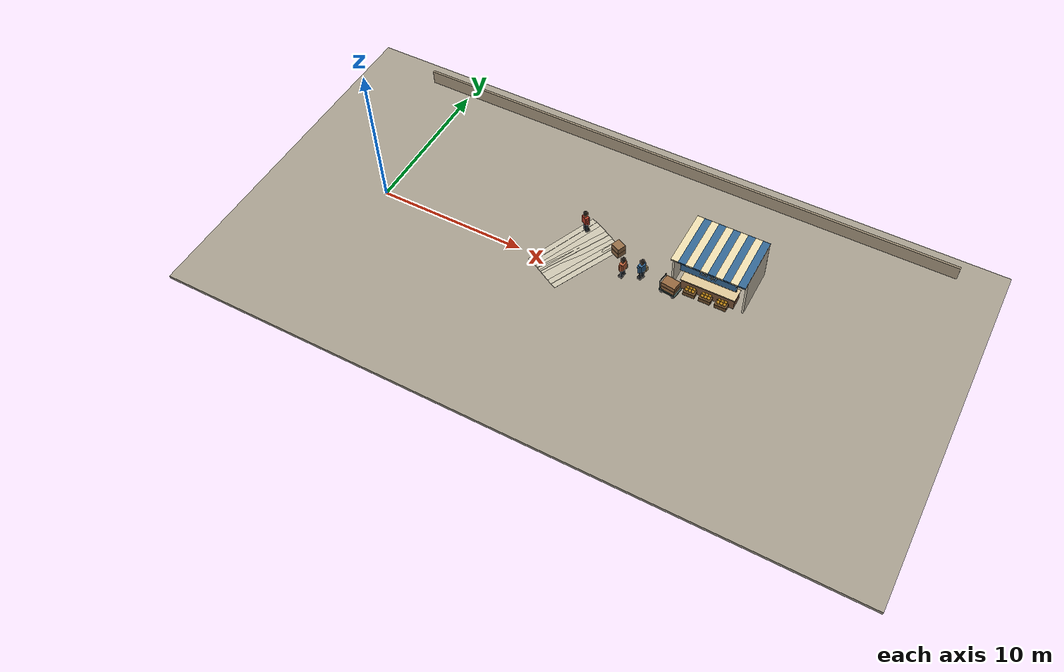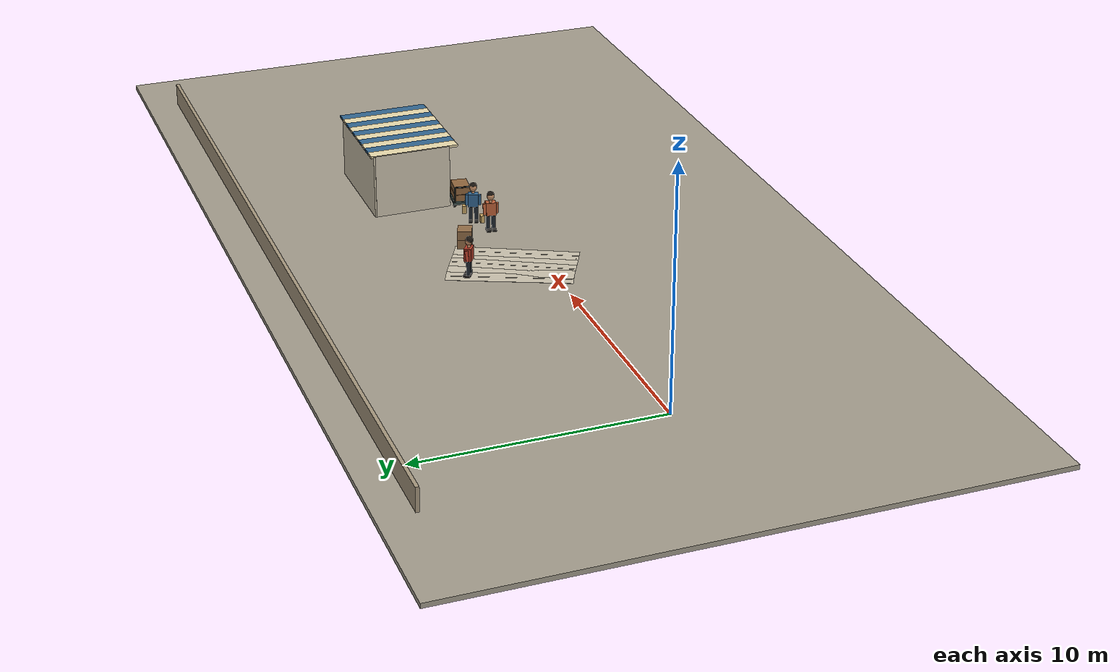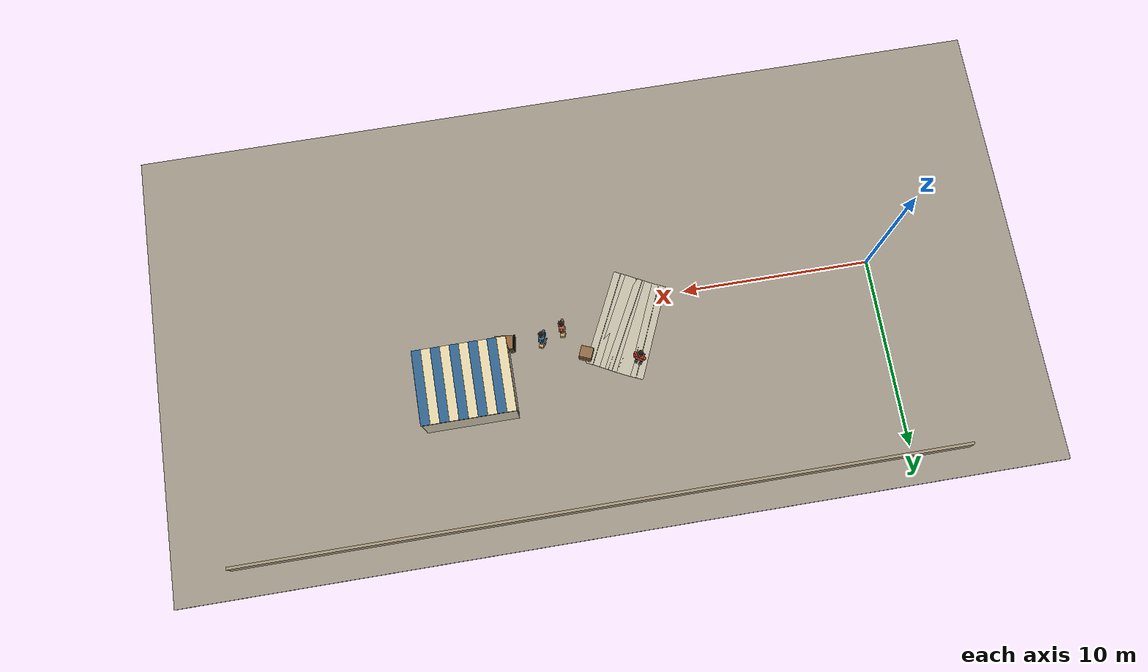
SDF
<sdf version="1.10">
 <world name="swan_market">
  <model name="ground">
   <static>true</static>
   <pose>15 0 -0.1 0 0 0</pose>
   <link name="body">
    <collision name="box_collision"><geometry><box><size>46 24 0.2</size></box></geometry></collision>
    <visual name="box_visual">
     <geometry><box><size>46 24 0.2</size></box></geometry>
     <material><ambient>0.64 0.61 0.55 1</ambient><diffuse>0.64 0.61 0.55 1</diffuse></material>
    </visual>
   </link>
  </model>
  <model name="market_paving_28">
   <static>true</static>
   <pose>12.25 1.7901 0.002 0 0 -0.40758</pose>
   <link name="body">
    <visual name="box_visual">
     <geometry><box><size>0.75 5.2 0.004</size></box></geometry>
     <material><ambient>0.79 0.76 0.68 1</ambient><diffuse>0.79 0.76 0.68 1</diffuse></material>
    </visual>
   </link>
  </model>
  <model name="paving_joint_28">
   <static>true</static>
   <pose>12.25 1.7901 0.0045 0 0 -0.40758</pose>
   <link name="body">
    <visual name="box_visual">
     <geometry><box><size>0.025 5.2 0.001</size></box></geometry>
     <material><ambient>0.67 0.64 0.57 1</ambient><diffuse>0.67 0.64 0.57 1</diffuse></material>
    </visual>
   </link>
  </model>
  <model name="market_paving_29">
   <static>true</static>
   <pose>12.75 1.5562 0.002 0 0 -0.46221</pose>
   <link name="body">
    <visual name="box_visual">
     <geometry><box><size>0.75 5.2 0.004</size></box></geometry>
     <material><ambient>0.79 0.76 0.68 1</ambient><diffuse>0.79 0.76 0.68 1</diffuse></material>
    </visual>
   </link>
  </model>
  <model name="market_paving_30">
   <static>true</static>
   <pose>13.25 1.2978 0.002 0 0 -0.48699</pose>
   <link name="body">
    <visual name="box_visual">
     <geometry><box><size>0.75 5.2 0.004</size></box></geometry>
     <material><ambient>0.79 0.76 0.68 1</ambient><diffuse>0.79 0.76 0.68 1</diffuse></material>
    </visual>
   </link>
  </model>
  <model name="paving_joint_30">
   <static>true</static>
   <pose>13.25 1.2978 0.0045 0 0 -0.48699</pose>
   <link name="body">
    <visual name="box_visual">
     <geometry><box><size>0.025 5.2 0.001</size></box></geometry>
     <material><ambient>0.67 0.64 0.57 1</ambient><diffuse>0.67 0.64 0.57 1</diffuse></material>
    </visual>
   </link>
  </model>
  <model name="market_paving_31">
   <static>true</static>
   <pose>13.75 1.0326 0.002 0 0 -0.48375</pose>
   <link name="body">
    <visual name="box_visual">
     <geometry><box><size>0.75 5.2 0.004</size></box></geometry>
     <material><ambient>0.79 0.76 0.68 1</ambient><diffuse>0.79 0.76 0.68 1</diffuse></material>
    </visual>
   </link>
  </model>
  <model name="market_paving_32">
   <static>true</static>
   <pose>14.25 0.77782 0.002 0 0 -0.45458</pose>
   <link name="body">
    <visual name="box_visual">
     <geometry><box><size>0.75 5.2 0.004</size></box></geometry>
     <material><ambient>0.79 0.76 0.68 1</ambient><diffuse>0.79 0.76 0.68 1</diffuse></material>
    </visual>
   </link>
  </model>
  <model name="paving_joint_32">
   <static>true</static>
   <pose>14.25 0.77782 0.0045 0 0 -0.45458</pose>
   <link name="body">
    <visual name="box_visual">
     <geometry><box><size>0.025 5.2 0.001</size></box></geometry>
     <material><ambient>0.67 0.64 0.57 1</ambient><diffuse>0.67 0.64 0.57 1</diffuse></material>
    </visual>
   </link>
  </model>
  <model name="boundary_1">
   <static>true</static>
   <pose>16 10.5 0.5 0 0 0</pose>
   <link name="body">
    <collision name="box_collision"><geometry><box><size>38 0.15 1</size></box></geometry></collision>
    <visual name="box_visual">
     <geometry><box><size>38 0.15 1</size></box></geometry>
     <material><ambient>0.65 0.59 0.49 1</ambient><diffuse>0.65 0.59 0.49 1</diffuse></material>
    </visual>
   </link>
  </model>
  <model name="stall_02">
   <static>true</static>
   <pose>22 3.5471 0 0 0 0</pose>
   <link name="body">
    <collision name="rear_collision">
     <pose>0 1.65 1.4 0 0 0</pose>
     <geometry><box><size>4.8 0.15 2.8</size></box></geometry>
    </collision>
    <visual name="rear_visual">
     <pose>0 1.65 1.4 0 0 0</pose>
     <geometry><box><size>4.8 0.15 2.8</size></box></geometry>
     <material><ambient>0.78 0.74 0.65 1</ambient><diffuse>0.78 0.74 0.65 1</diffuse></material>
    </visual>
    <collision name="side_-2.35_collision">
     <pose>-2.35 0 1.4 0 0 0</pose>
     <geometry><box><size>0.12 3.3 2.8</size></box></geometry>
    </collision>
    <visual name="side_-2.35_visual">
     <pose>-2.35 0 1.4 0 0 0</pose>
     <geometry><box><size>0.12 3.3 2.8</size></box></geometry>
     <material><ambient>0.81 0.77 0.69 1</ambient><diffuse>0.81 0.77 0.69 1</diffuse></material>
    </visual>
    <collision name="side_2.35_collision">
     <pose>2.35 0 1.4 0 0 0</pose>
     <geometry><box><size>0.12 3.3 2.8</size></box></geometry>
    </collision>
    <visual name="side_2.35_visual">
     <pose>2.35 0 1.4 0 0 0</pose>
     <geometry><box><size>0.12 3.3 2.8</size></box></geometry>
     <material><ambient>0.81 0.77 0.69 1</ambient><diffuse>0.81 0.77 0.69 1</diffuse></material>
    </visual>
    <collision name="counter_collision">
     <pose>0 -1.22 0.4 0 0 0</pose>
     <geometry><box><size>3.5 0.85 0.8</size></box></geometry>
    </collision>
    <visual name="counter_visual">
     <pose>0 -1.22 0.4 0 0 0</pose>
     <geometry><box><size>3.5 0.85 0.8</size></box></geometry>
     <material><ambient>0.47 0.32 0.21 1</ambient><diffuse>0.47 0.32 0.21 1</diffuse></material>
    </visual>
    <collision name="counter_top_collision">
     <pose>0 -1.22 0.83 0 0 0</pose>
     <geometry><box><size>3.6 0.95 0.06</size></box></geometry>
    </collision>
    <visual name="counter_top_visual">
     <pose>0 -1.22 0.83 0 0 0</pose>
     <geometry><box><size>3.6 0.95 0.06</size></box></geometry>
     <material><ambient>0.86 0.77 0.59 1</ambient><diffuse>0.86 0.77 0.59 1</diffuse></material>
    </visual>
    <collision name="awning_0_collision">
     <pose>-2.16 -0.1 2.78 0 0 0</pose>
     <geometry><box><size>0.48 3.85 0.1</size></box></geometry>
    </collision>
    <visual name="awning_0_visual">
     <pose>-2.16 -0.1 2.78 0 0 0</pose>
     <geometry><box><size>0.48 3.85 0.1</size></box></geometry>
     <material><ambient>0.92 0.86 0.68 1</ambient><diffuse>0.92 0.86 0.68 1</diffuse></material>
    </visual>
    <collision name="awning_1_collision">
     <pose>-1.68 -0.1 2.78 0 0 0</pose>
     <geometry><box><size>0.48 3.85 0.1</size></box></geometry>
    </collision>
    <visual name="awning_1_visual">
     <pose>-1.68 -0.1 2.78 0 0 0</pose>
     <geometry><box><size>0.48 3.85 0.1</size></box></geometry>
     <material><ambient>0.2 0.4 0.57 1</ambient><diffuse>0.2 0.4 0.57 1</diffuse></material>
    </visual>
    <collision name="awning_2_collision">
     <pose>-1.2 -0.1 2.78 0 0 0</pose>
     <geometry><box><size>0.48 3.85 0.1</size></box></geometry>
    </collision>
    <visual name="awning_2_visual">
     <pose>-1.2 -0.1 2.78 0 0 0</pose>
     <geometry><box><size>0.48 3.85 0.1</size></box></geometry>
     <material><ambient>0.92 0.86 0.68 1</ambient><diffuse>0.92 0.86 0.68 1</diffuse></material>
    </visual>
    <collision name="awning_3_collision">
     <pose>-0.72 -0.1 2.78 0 0 0</pose>
     <geometry><box><size>0.48 3.85 0.1</size></box></geometry>
    </collision>
    <visual name="awning_3_visual">
     <pose>-0.72 -0.1 2.78 0 0 0</pose>
     <geometry><box><size>0.48 3.85 0.1</size></box></geometry>
     <material><ambient>0.2 0.4 0.57 1</ambient><diffuse>0.2 0.4 0.57 1</diffuse></material>
    </visual>
    <collision name="awning_4_collision">
     <pose>-0.24 -0.1 2.78 0 0 0</pose>
     <geometry><box><size>0.48 3.85 0.1</size></box></geometry>
    </collision>
    <visual name="awning_4_visual">
     <pose>-0.24 -0.1 2.78 0 0 0</pose>
     <geometry><box><size>0.48 3.85 0.1</size></box></geometry>
     <material><ambient>0.92 0.86 0.68 1</ambient><diffuse>0.92 0.86 0.68 1</diffuse></material>
    </visual>
    <collision name="awning_5_collision">
     <pose>0.24 -0.1 2.78 0 0 0</pose>
     <geometry><box><size>0.48 3.85 0.1</size></box></geometry>
    </collision>
    <visual name="awning_5_visual">
     <pose>0.24 -0.1 2.78 0 0 0</pose>
     <geometry><box><size>0.48 3.85 0.1</size></box></geometry>
     <material><ambient>0.2 0.4 0.57 1</ambient><diffuse>0.2 0.4 0.57 1</diffuse></material>
    </visual>
    <collision name="awning_6_collision">
     <pose>0.72 -0.1 2.78 0 0 0</pose>
     <geometry><box><size>0.48 3.85 0.1</size></box></geometry>
    </collision>
    <visual name="awning_6_visual">
     <pose>0.72 -0.1 2.78 0 0 0</pose>
     <geometry><box><size>0.48 3.85 0.1</size></box></geometry>
     <material><ambient>0.92 0.86 0.68 1</ambient><diffuse>0.92 0.86 0.68 1</diffuse></material>
    </visual>
    <collision name="awning_7_collision">
     <pose>1.2 -0.1 2.78 0 0 0</pose>
     <geometry><box><size>0.48 3.85 0.1</size></box></geometry>
    </collision>
    <visual name="awning_7_visual">
     <pose>1.2 -0.1 2.78 0 0 0</pose>
     <geometry><box><size>0.48 3.85 0.1</size></box></geometry>
     <material><ambient>0.2 0.4 0.57 1</ambient><diffuse>0.2 0.4 0.57 1</diffuse></material>
    </visual>
    <collision name="awning_8_collision">
     <pose>1.68 -0.1 2.78 0 0 0</pose>
     <geometry><box><size>0.48 3.85 0.1</size></box></geometry>
    </collision>
    <visual name="awning_8_visual">
     <pose>1.68 -0.1 2.78 0 0 0</pose>
     <geometry><box><size>0.48 3.85 0.1</size></box></geometry>
     <material><ambient>0.92 0.86 0.68 1</ambient><diffuse>0.92 0.86 0.68 1</diffuse></material>
    </visual>
    <collision name="awning_9_collision">
     <pose>2.16 -0.1 2.78 0 0 0</pose>
     <geometry><box><size>0.48 3.85 0.1</size></box></geometry>
    </collision>
    <visual name="awning_9_visual">
     <pose>2.16 -0.1 2.78 0 0 0</pose>
     <geometry><box><size>0.48 3.85 0.1</size></box></geometry>
     <material><ambient>0.2 0.4 0.57 1</ambient><diffuse>0.2 0.4 0.57 1</diffuse></material>
    </visual>
    <collision name="crate_-1_collision">
     <pose>-1.04 -1.77 0.15 0 0 0</pose>
     <geometry><box><size>0.78 0.6 0.3</size></box></geometry>
    </collision>
    <visual name="crate_-1_visual">
     <pose>-1.04 -1.77 0.15 0 0 0</pose>
     <geometry><box><size>0.78 0.6 0.3</size></box></geometry>
     <material><ambient>0.4 0.28 0.15 1</ambient><diffuse>0.4 0.28 0.15 1</diffuse></material>
    </visual>
    <visual name="produce_-1_0_visual">
     <pose>-1.25 -1.88 0.39 0 0 0</pose>
     <geometry><sphere><radius>0.105</radius></sphere></geometry>
     <material><ambient>0.84 0.59 0.1 1</ambient><diffuse>0.84 0.59 0.1 1</diffuse></material>
    </visual>
    <visual name="produce_-1_1_visual">
     <pose>-1.04 -1.88 0.39 0 0 0</pose>
     <geometry><sphere><radius>0.105</radius></sphere></geometry>
     <material><ambient>0.84 0.59 0.1 1</ambient><diffuse>0.84 0.59 0.1 1</diffuse></material>
    </visual>
    <visual name="produce_-1_2_visual">
     <pose>-0.83 -1.88 0.39 0 0 0</pose>
     <geometry><sphere><radius>0.105</radius></sphere></geometry>
     <material><ambient>0.84 0.59 0.1 1</ambient><diffuse>0.84 0.59 0.1 1</diffuse></material>
    </visual>
    <visual name="produce_-1_3_visual">
     <pose>-1.25 -1.66 0.39 0 0 0</pose>
     <geometry><sphere><radius>0.105</radius></sphere></geometry>
     <material><ambient>0.84 0.59 0.1 1</ambient><diffuse>0.84 0.59 0.1 1</diffuse></material>
    </visual>
    <visual name="produce_-1_4_visual">
     <pose>-1.04 -1.66 0.39 0 0 0</pose>
     <geometry><sphere><radius>0.105</radius></sphere></geometry>
     <material><ambient>0.84 0.59 0.1 1</ambient><diffuse>0.84 0.59 0.1 1</diffuse></material>
    </visual>
    <visual name="produce_-1_5_visual">
     <pose>-0.83 -1.66 0.39 0 0 0</pose>
     <geometry><sphere><radius>0.105</radius></sphere></geometry>
     <material><ambient>0.84 0.59 0.1 1</ambient><diffuse>0.84 0.59 0.1 1</diffuse></material>
    </visual>
    <collision name="crate_0_collision">
     <pose>0 -1.77 0.15 0 0 0</pose>
     <geometry><box><size>0.78 0.6 0.3</size></box></geometry>
    </collision>
    <visual name="crate_0_visual">
     <pose>0 -1.77 0.15 0 0 0</pose>
     <geometry><box><size>0.78 0.6 0.3</size></box></geometry>
     <material><ambient>0.4 0.28 0.15 1</ambient><diffuse>0.4 0.28 0.15 1</diffuse></material>
    </visual>
    <visual name="produce_0_0_visual">
     <pose>-0.21 -1.88 0.39 0 0 0</pose>
     <geometry><sphere><radius>0.105</radius></sphere></geometry>
     <material><ambient>0.84 0.59 0.1 1</ambient><diffuse>0.84 0.59 0.1 1</diffuse></material>
    </visual>
    <visual name="produce_0_1_visual">
     <pose>0 -1.88 0.39 0 0 0</pose>
     <geometry><sphere><radius>0.105</radius></sphere></geometry>
     <material><ambient>0.84 0.59 0.1 1</ambient><diffuse>0.84 0.59 0.1 1</diffuse></material>
    </visual>
    <visual name="produce_0_2_visual">
     <pose>0.21 -1.88 0.39 0 0 0</pose>
     <geometry><sphere><radius>0.105</radius></sphere></geometry>
     <material><ambient>0.84 0.59 0.1 1</ambient><diffuse>0.84 0.59 0.1 1</diffuse></material>
    </visual>
    <visual name="produce_0_3_visual">
     <pose>-0.21 -1.66 0.39 0 0 0</pose>
     <geometry><sphere><radius>0.105</radius></sphere></geometry>
     <material><ambient>0.84 0.59 0.1 1</ambient><diffuse>0.84 0.59 0.1 1</diffuse></material>
    </visual>
    <visual name="produce_0_4_visual">
     <pose>0 -1.66 0.39 0 0 0</pose>
     <geometry><sphere><radius>0.105</radius></sphere></geometry>
     <material><ambient>0.84 0.59 0.1 1</ambient><diffuse>0.84 0.59 0.1 1</diffuse></material>
    </visual>
    <visual name="produce_0_5_visual">
     <pose>0.21 -1.66 0.39 0 0 0</pose>
     <geometry><sphere><radius>0.105</radius></sphere></geometry>
     <material><ambient>0.84 0.59 0.1 1</ambient><diffuse>0.84 0.59 0.1 1</diffuse></material>
    </visual>
    <collision name="crate_1_collision">
     <pose>1.04 -1.77 0.15 0 0 0</pose>
     <geometry><box><size>0.78 0.6 0.3</size></box></geometry>
    </collision>
    <visual name="crate_1_visual">
     <pose>1.04 -1.77 0.15 0 0 0</pose>
     <geometry><box><size>0.78 0.6 0.3</size></box></geometry>
     <material><ambient>0.4 0.28 0.15 1</ambient><diffuse>0.4 0.28 0.15 1</diffuse></material>
    </visual>
    <visual name="produce_1_0_visual">
     <pose>0.83 -1.88 0.39 0 0 0</pose>
     <geometry><sphere><radius>0.105</radius></sphere></geometry>
     <material><ambient>0.84 0.59 0.1 1</ambient><diffuse>0.84 0.59 0.1 1</diffuse></material>
    </visual>
    <visual name="produce_1_1_visual">
     <pose>1.04 -1.88 0.39 0 0 0</pose>
     <geometry><sphere><radius>0.105</radius></sphere></geometry>
     <material><ambient>0.84 0.59 0.1 1</ambient><diffuse>0.84 0.59 0.1 1</diffuse></material>
    </visual>
    <visual name="produce_1_2_visual">
     <pose>1.25 -1.88 0.39 0 0 0</pose>
     <geometry><sphere><radius>0.105</radius></sphere></geometry>
     <material><ambient>0.84 0.59 0.1 1</ambient><diffuse>0.84 0.59 0.1 1</diffuse></material>
    </visual>
    <visual name="produce_1_3_visual">
     <pose>0.83 -1.66 0.39 0 0 0</pose>
     <geometry><sphere><radius>0.105</radius></sphere></geometry>
     <material><ambient>0.84 0.59 0.1 1</ambient><diffuse>0.84 0.59 0.1 1</diffuse></material>
    </visual>
    <visual name="produce_1_4_visual">
     <pose>1.04 -1.66 0.39 0 0 0</pose>
     <geometry><sphere><radius>0.105</radius></sphere></geometry>
     <material><ambient>0.84 0.59 0.1 1</ambient><diffuse>0.84 0.59 0.1 1</diffuse></material>
    </visual>
    <visual name="produce_1_5_visual">
     <pose>1.25 -1.66 0.39 0 0 0</pose>
     <geometry><sphere><radius>0.105</radius></sphere></geometry>
     <material><ambient>0.84 0.59 0.1 1</ambient><diffuse>0.84 0.59 0.1 1</diffuse></material>
    </visual>
   </link>
  </model>
  <model name="signboard_2">
   <static>true</static>
   <pose>22 1.7871 2.24 0 0 0</pose>
   <link name="body">
    <collision name="box_collision"><geometry><box><size>3.65 0.08 0.72</size></box></geometry></collision>
    <visual name="box_visual">
     <geometry><box><size>3.65 0.08 0.72</size></box></geometry>
     <material><ambient>0.2 0.4 0.57 1</ambient><diffuse>0.2 0.4 0.57 1</diffuse></material>
    </visual>
   </link>
  </model>
  <model name="sign_shop_2">
   <static>true</static>
   <pose>22 1.7391 2.24 0 0 0</pose>
   <link name="body">
    <visual name="top_visual">
     <pose>0 -0.003 0.32062 0 0 0</pose>
     <geometry><box><size>3.5136 0.003 0.0108</size></box></geometry>
     <material><ambient>1 0.961 0.875 1</ambient><diffuse>1 0.961 0.875 1</diffuse></material>
    </visual>
    <visual name="bottom_visual">
     <pose>0 -0.003 -0.32062 0 0 0</pose>
     <geometry><box><size>3.5136 0.003 0.0108</size></box></geometry>
     <material><ambient>1 0.961 0.875 1</ambient><diffuse>1 0.961 0.875 1</diffuse></material>
    </visual>
    <visual name="left_visual">
     <pose>-1.7568 -0.003 0 0 0 0</pose>
     <geometry><box><size>0.0108 0.003 0.64125</size></box></geometry>
     <material><ambient>1 0.961 0.875 1</ambient><diffuse>1 0.961 0.875 1</diffuse></material>
    </visual>
    <visual name="right_visual">
     <pose>1.7568 -0.003 0 0 0 0</pose>
     <geometry><box><size>0.0108 0.003 0.64125</size></box></geometry>
     <material><ambient>1 0.961 0.875 1</ambient><diffuse>1 0.961 0.875 1</diffuse></material>
    </visual>
    <visual name="ink_0_visual">
     <pose>0.21563 -0.003 0.15938 0 0 0</pose>
     <geometry><box><size>0.01875 0.003 0.01875</size></box></geometry>
     <material><ambient>1 0.961 0.875 1</ambient><diffuse>1 0.961 0.875 1</diffuse></material>
    </visual>
    <visual name="ink_1_visual">
     <pose>-0.225 -0.003 0.13125 0 0 0</pose>
     <geometry><box><size>0.1125 0.003 0.0375</size></box></geometry>
     <material><ambient>1 0.961 0.875 1</ambient><diffuse>1 0.961 0.875 1</diffuse></material>
    </visual>
    <visual name="ink_2_visual">
     <pose>0.20625 -0.003 0.12188 0 0 0</pose>
     <geometry><box><size>0.0375 0.003 0.05625</size></box></geometry>
     <material><ambient>1 0.961 0.875 1</ambient><diffuse>1 0.961 0.875 1</diffuse></material>
    </visual>
    <visual name="ink_3_visual">
     <pose>0.2625 -0.003 0.13125 0 0 0</pose>
     <geometry><box><size>0.0375 0.003 0.075</size></box></geometry>
     <material><ambient>1 0.961 0.875 1</ambient><diffuse>1 0.961 0.875 1</diffuse></material>
    </visual>
    <visual name="ink_4_visual">
     <pose>0.47813 -0.003 0.10313 0 0 0</pose>
     <geometry><box><size>0.01875 0.003 0.01875</size></box></geometry>
     <material><ambient>1 0.961 0.875 1</ambient><diffuse>1 0.961 0.875 1</diffuse></material>
    </visual>
    <visual name="ink_5_visual">
     <pose>0.525 -0.003 0.13125 0 0 0</pose>
     <geometry><box><size>0.0375 0.003 0.075</size></box></geometry>
     <material><ambient>1 0.961 0.875 1</ambient><diffuse>1 0.961 0.875 1</diffuse></material>
    </visual>
    <visual name="ink_6_visual">
     <pose>-0.54375 -0.003 0.1125 0 0 0</pose>
     <geometry><box><size>0.0375 0.003 0.075</size></box></geometry>
     <material><ambient>1 0.961 0.875 1</ambient><diffuse>1 0.961 0.875 1</diffuse></material>
    </visual>
    <visual name="ink_7_visual">
     <pose>-0.44062 -0.003 0.1125 0 0 0</pose>
     <geometry><box><size>0.01875 0.003 0.075</size></box></geometry>
     <material><ambient>1 0.961 0.875 1</ambient><diffuse>1 0.961 0.875 1</diffuse></material>
    </visual>
    <visual name="ink_8_visual">
     <pose>-0.10312 -0.003 0.12188 0 0 0</pose>
     <geometry><box><size>0.01875 0.003 0.09375</size></box></geometry>
     <material><ambient>1 0.961 0.875 1</ambient><diffuse>1 0.961 0.875 1</diffuse></material>
    </visual>
    <visual name="ink_9_visual">
     <pose>0.1125 -0.003 0.1125 0 0 0</pose>
     <geometry><box><size>0.0375 0.003 0.075</size></box></geometry>
     <material><ambient>1 0.961 0.875 1</ambient><diffuse>1 0.961 0.875 1</diffuse></material>
    </visual>
    <visual name="ink_10_visual">
     <pose>0.23437 -0.003 0.084375 0 0 0</pose>
     <geometry><box><size>0.09375 0.003 0.01875</size></box></geometry>
     <material><ambient>1 0.961 0.875 1</ambient><diffuse>1 0.961 0.875 1</diffuse></material>
    </visual>
    <visual name="ink_11_visual">
     <pose>0.39375 -0.003 0.1125 0 0 0</pose>
     <geometry><box><size>0.0375 0.003 0.075</size></box></geometry>
     <material><ambient>1 0.961 0.875 1</ambient><diffuse>1 0.961 0.875 1</diffuse></material>
    </visual>
    <visual name="ink_12_visual">
     <pose>0.49688 -0.003 0.084375 0 0 0</pose>
     <geometry><box><size>0.09375 0.003 0.01875</size></box></geometry>
     <material><ambient>1 0.961 0.875 1</ambient><diffuse>1 0.961 0.875 1</diffuse></material>
    </visual>
    <visual name="ink_13_visual">
     <pose>-0.49687 -0.003 0.065625 0 0 0</pose>
     <geometry><box><size>0.13125 0.003 0.01875</size></box></geometry>
     <material><ambient>1 0.961 0.875 1</ambient><diffuse>1 0.961 0.875 1</diffuse></material>
    </visual>
    <visual name="ink_14_visual">
     <pose>-0.36563 -0.003 0.1125 0 0 0</pose>
     <geometry><box><size>0.01875 0.003 0.1125</size></box></geometry>
     <material><ambient>1 0.961 0.875 1</ambient><diffuse>1 0.961 0.875 1</diffuse></material>
    </visual>
    <visual name="ink_15_visual">
     <pose>-0.09375 -0.003 0.065625 0 0 0</pose>
     <geometry><box><size>0.0375 0.003 0.01875</size></box></geometry>
     <material><ambient>1 0.961 0.875 1</ambient><diffuse>1 0.961 0.875 1</diffuse></material>
    </visual>
    <visual name="ink_16_visual">
     <pose>0.12187 -0.003 0.065625 0 0 0</pose>
     <geometry><box><size>0.05625 0.003 0.01875</size></box></geometry>
     <material><ambient>1 0.961 0.875 1</ambient><diffuse>1 0.961 0.875 1</diffuse></material>
    </visual>
    <visual name="ink_17_visual">
     <pose>0.39375 -0.003 0.065625 0 0 0</pose>
     <geometry><box><size>0.075 0.003 0.01875</size></box></geometry>
     <material><ambient>1 0.961 0.875 1</ambient><diffuse>1 0.961 0.875 1</diffuse></material>
    </visual>
    <visual name="ink_18_visual">
     <pose>-0.34688 -0.003 0.046875 0 0 0</pose>
     <geometry><box><size>0.05625 0.003 0.01875</size></box></geometry>
     <material><ambient>1 0.961 0.875 1</ambient><diffuse>1 0.961 0.875 1</diffuse></material>
    </visual>
    <visual name="ink_19_visual">
     <pose>-0.075 -0.003 0.046875 0 0 0</pose>
     <geometry><box><size>0.075 0.003 0.01875</size></box></geometry>
     <material><ambient>1 0.961 0.875 1</ambient><diffuse>1 0.961 0.875 1</diffuse></material>
    </visual>
    <visual name="ink_20_visual">
     <pose>0.09375 -0.003 0.046875 0 0 0</pose>
     <geometry><box><size>0.0375 0.003 0.01875</size></box></geometry>
     <material><ambient>1 0.961 0.875 1</ambient><diffuse>1 0.961 0.875 1</diffuse></material>
    </visual>
    <visual name="ink_21_visual">
     <pose>0.15 -0.003 0.046875 0 0 0</pose>
     <geometry><box><size>0.0375 0.003 0.01875</size></box></geometry>
     <material><ambient>1 0.961 0.875 1</ambient><diffuse>1 0.961 0.875 1</diffuse></material>
    </visual>
    <visual name="ink_22_visual">
     <pose>0.20625 -0.003 0.05625 0 0 0</pose>
     <geometry><box><size>0.0375 0.003 0.0375</size></box></geometry>
     <material><ambient>1 0.961 0.875 1</ambient><diffuse>1 0.961 0.875 1</diffuse></material>
    </visual>
    <visual name="ink_23_visual">
     <pose>0.36563 -0.003 0.046875 0 0 0</pose>
     <geometry><box><size>0.01875 0.003 0.01875</size></box></geometry>
     <material><ambient>1 0.961 0.875 1</ambient><diffuse>1 0.961 0.875 1</diffuse></material>
    </visual>
    <visual name="ink_24_visual">
     <pose>0.43125 -0.003 0.046875 0 0 0</pose>
     <geometry><box><size>0.0375 0.003 0.01875</size></box></geometry>
     <material><ambient>1 0.961 0.875 1</ambient><diffuse>1 0.961 0.875 1</diffuse></material>
    </visual>
    <visual name="ink_25_visual">
     <pose>0.075 -0.003 0.028125 0 0 0</pose>
     <geometry><box><size>0.0375 0.003 0.01875</size></box></geometry>
     <material><ambient>1 0.961 0.875 1</ambient><diffuse>1 0.961 0.875 1</diffuse></material>
    </visual>
    <visual name="ink_26_visual">
     <pose>0.1875 -0.003 0.028125 0 0 0</pose>
     <geometry><box><size>0.075 0.003 0.01875</size></box></geometry>
     <material><ambient>1 0.961 0.875 1</ambient><diffuse>1 0.961 0.875 1</diffuse></material>
    </visual>
    <visual name="ink_27_visual">
     <pose>0.34687 -0.003 0.028125 0 0 0</pose>
     <geometry><box><size>0.05625 0.003 0.01875</size></box></geometry>
     <material><ambient>1 0.961 0.875 1</ambient><diffuse>1 0.961 0.875 1</diffuse></material>
    </visual>
    <visual name="ink_28_visual">
     <pose>0.45 -0.003 0.028125 0 0 0</pose>
     <geometry><box><size>0.0375 0.003 0.01875</size></box></geometry>
     <material><ambient>1 0.961 0.875 1</ambient><diffuse>1 0.961 0.875 1</diffuse></material>
    </visual>
    <visual name="ink_29_visual">
     <pose>0.2625 -0.003 0.0375 0 0 0</pose>
     <geometry><box><size>0.0375 0.003 0.075</size></box></geometry>
     <material><ambient>1 0.961 0.875 1</ambient><diffuse>1 0.961 0.875 1</diffuse></material>
    </visual>
    <visual name="ink_30_visual">
     <pose>0.32813 -0.003 0.009375 0 0 0</pose>
     <geometry><box><size>0.01875 0.003 0.01875</size></box></geometry>
     <material><ambient>1 0.961 0.875 1</ambient><diffuse>1 0.961 0.875 1</diffuse></material>
    </visual>
    <visual name="ink_31_visual">
     <pose>-0.54375 -0.003 0.01875 0 0 0</pose>
     <geometry><box><size>0.0375 0.003 0.075</size></box></geometry>
     <material><ambient>1 0.961 0.875 1</ambient><diffuse>1 0.961 0.875 1</diffuse></material>
    </visual>
    <visual name="ink_32_visual">
     <pose>-0.44062 -0.003 0.01875 0 0 0</pose>
     <geometry><box><size>0.01875 0.003 0.075</size></box></geometry>
     <material><ambient>1 0.961 0.875 1</ambient><diffuse>1 0.961 0.875 1</diffuse></material>
    </visual>
    <visual name="ink_33_visual">
     <pose>-0.27187 -0.003 0.046875 0 0 0</pose>
     <geometry><box><size>0.01875 0.003 0.13125</size></box></geometry>
     <material><ambient>1 0.961 0.875 1</ambient><diffuse>1 0.961 0.875 1</diffuse></material>
    </visual>
    <visual name="ink_34_visual">
     <pose>-0.15 -0.003 -0.009375 0 0 0</pose>
     <geometry><box><size>0.0375 0.003 0.01875</size></box></geometry>
     <material><ambient>1 0.961 0.875 1</ambient><diffuse>1 0.961 0.875 1</diffuse></material>
    </visual>
    <visual name="ink_35_visual">
     <pose>0.1875 -0.003 -0.009375 0 0 0</pose>
     <geometry><box><size>0.1125 0.003 0.01875</size></box></geometry>
     <material><ambient>1 0.961 0.875 1</ambient><diffuse>1 0.961 0.875 1</diffuse></material>
    </visual>
    <visual name="ink_36_visual">
     <pose>0.525 -0.003 0.028125 0 0 0</pose>
     <geometry><box><size>0.0375 0.003 0.09375</size></box></geometry>
     <material><ambient>1 0.961 0.875 1</ambient><diffuse>1 0.961 0.875 1</diffuse></material>
    </visual>
    <visual name="ink_37_visual">
     <pose>-0.49687 -0.003 -0.028125 0 0 0</pose>
     <geometry><box><size>0.13125 0.003 0.01875</size></box></geometry>
     <material><ambient>1 0.961 0.875 1</ambient><diffuse>1 0.961 0.875 1</diffuse></material>
    </visual>
    <visual name="ink_38_visual">
     <pose>-0.20625 -0.003 -0.028125 0 0 0</pose>
     <geometry><box><size>0.15 0.003 0.01875</size></box></geometry>
     <material><ambient>1 0.961 0.875 1</ambient><diffuse>1 0.961 0.875 1</diffuse></material>
    </visual>
    <visual name="ink_39_visual">
     <pose>0.14062 -0.003 -0.028125 0 0 0</pose>
     <geometry><box><size>0.05625 0.003 0.01875</size></box></geometry>
     <material><ambient>1 0.961 0.875 1</ambient><diffuse>1 0.961 0.875 1</diffuse></material>
    </visual>
    <visual name="ink_40_visual">
     <pose>0.25312 -0.003 -0.028125 0 0 0</pose>
     <geometry><box><size>0.05625 0.003 0.01875</size></box></geometry>
     <material><ambient>1 0.961 0.875 1</ambient><diffuse>1 0.961 0.875 1</diffuse></material>
    </visual>
    <visual name="ink_41_visual">
     <pose>0.53438 -0.003 -0.028125 0 0 0</pose>
     <geometry><box><size>0.01875 0.003 0.01875</size></box></geometry>
     <material><ambient>1 0.961 0.875 1</ambient><diffuse>1 0.961 0.875 1</diffuse></material>
    </visual>
    <visual name="ink_42_visual">
     <pose>0.1125 -0.003 -0.05625 0 0 0</pose>
     <geometry><box><size>0.0375 0.003 0.0375</size></box></geometry>
     <material><ambient>1 0.961 0.875 1</ambient><diffuse>1 0.961 0.875 1</diffuse></material>
    </visual>
    <visual name="ink_43_visual">
     <pose>0.2625 -0.003 -0.05625 0 0 0</pose>
     <geometry><box><size>0.0375 0.003 0.0375</size></box></geometry>
     <material><ambient>1 0.961 0.875 1</ambient><diffuse>1 0.961 0.875 1</diffuse></material>
    </visual>
    <visual name="ink_44_visual">
     <pose>0.375 -0.003 -0.046875 0 0 0</pose>
     <geometry><box><size>0.0375 0.003 0.05625</size></box></geometry>
     <material><ambient>1 0.961 0.875 1</ambient><diffuse>1 0.961 0.875 1</diffuse></material>
    </visual>
    <visual name="ink_45_visual">
     <pose>0.1875 -0.003 -0.084375 0 0 0</pose>
     <geometry><box><size>0.15 0.003 0.01875</size></box></geometry>
     <material><ambient>1 0.961 0.875 1</ambient><diffuse>1 0.961 0.875 1</diffuse></material>
    </visual>
    <visual name="ink_46_visual">
     <pose>0.45 -0.003 -0.084375 0 0 0</pose>
     <geometry><box><size>0.1875 0.003 0.01875</size></box></geometry>
     <material><ambient>1 0.961 0.875 1</ambient><diffuse>1 0.961 0.875 1</diffuse></material>
    </visual>
    <visual name="ink_47_visual">
     <pose>-0.36563 -0.003 -0.0375 0 0 0</pose>
     <geometry><box><size>0.01875 0.003 0.15</size></box></geometry>
     <material><ambient>1 0.961 0.875 1</ambient><diffuse>1 0.961 0.875 1</diffuse></material>
    </visual>
    <visual name="ink_48_visual">
     <pose>-0.10312 -0.003 -0.0375 0 0 0</pose>
     <geometry><box><size>0.01875 0.003 0.15</size></box></geometry>
     <material><ambient>1 0.961 0.875 1</ambient><diffuse>1 0.961 0.875 1</diffuse></material>
    </visual>
    <visual name="ink_49_visual">
     <pose>0.1875 -0.003 -0.10313 0 0 0</pose>
     <geometry><box><size>0.075 0.003 0.01875</size></box></geometry>
     <material><ambient>1 0.961 0.875 1</ambient><diffuse>1 0.961 0.875 1</diffuse></material>
    </visual>
   </link>
  </model>
  <model name="shopper_crossing">
   <static>true</static>
   <pose>16.71 1.0471 0 0 0 3.0315</pose>
   <link name="body">
    <collision name="leg_-1_collision">
     <pose>0 -0.12 0.4 0 0 0</pose>
     <geometry><cylinder><radius>0.085</radius><length>0.68</length></cylinder></geometry>
    </collision>
    <visual name="leg_-1_visual">
     <pose>0 -0.12 0.4 0 0 0</pose>
     <geometry><cylinder><radius>0.085</radius><length>0.68</length></cylinder></geometry>
     <material><ambient>0.12 0.15 0.18 1</ambient><diffuse>0.12 0.15 0.18 1</diffuse></material>
    </visual>
    <collision name="shoe_-1_collision">
     <pose>0.06 -0.12 0.055 0 0 0</pose>
     <geometry><box><size>0.28 0.17 0.11</size></box></geometry>
    </collision>
    <visual name="shoe_-1_visual">
     <pose>0.06 -0.12 0.055 0 0 0</pose>
     <geometry><box><size>0.28 0.17 0.11</size></box></geometry>
     <material><ambient>0.08 0.07 0.06 1</ambient><diffuse>0.08 0.07 0.06 1</diffuse></material>
    </visual>
    <collision name="arm_-1_collision">
     <pose>0.02 -0.27 1.02 0 -0.12 0</pose>
     <geometry><cylinder><radius>0.068</radius><length>0.48</length></cylinder></geometry>
    </collision>
    <visual name="arm_-1_visual">
     <pose>0.02 -0.27 1.02 0 -0.12 0</pose>
     <geometry><cylinder><radius>0.068</radius><length>0.48</length></cylinder></geometry>
     <material><ambient>0.74 0.38 0.22 1</ambient><diffuse>0.74 0.38 0.22 1</diffuse></material>
    </visual>
    <collision name="leg_1_collision">
     <pose>0 0.12 0.4 0 0 0</pose>
     <geometry><cylinder><radius>0.085</radius><length>0.68</length></cylinder></geometry>
    </collision>
    <visual name="leg_1_visual">
     <pose>0 0.12 0.4 0 0 0</pose>
     <geometry><cylinder><radius>0.085</radius><length>0.68</length></cylinder></geometry>
     <material><ambient>0.12 0.15 0.18 1</ambient><diffuse>0.12 0.15 0.18 1</diffuse></material>
    </visual>
    <collision name="shoe_1_collision">
     <pose>0.06 0.12 0.055 0 0 0</pose>
     <geometry><box><size>0.28 0.17 0.11</size></box></geometry>
    </collision>
    <visual name="shoe_1_visual">
     <pose>0.06 0.12 0.055 0 0 0</pose>
     <geometry><box><size>0.28 0.17 0.11</size></box></geometry>
     <material><ambient>0.08 0.07 0.06 1</ambient><diffuse>0.08 0.07 0.06 1</diffuse></material>
    </visual>
    <collision name="arm_1_collision">
     <pose>0.02 0.27 1.02 0 0.12 0</pose>
     <geometry><cylinder><radius>0.068</radius><length>0.48</length></cylinder></geometry>
    </collision>
    <visual name="arm_1_visual">
     <pose>0.02 0.27 1.02 0 0.12 0</pose>
     <geometry><cylinder><radius>0.068</radius><length>0.48</length></cylinder></geometry>
     <material><ambient>0.74 0.38 0.22 1</ambient><diffuse>0.74 0.38 0.22 1</diffuse></material>
    </visual>
    <collision name="torso_collision">
     <pose>0 0 1.02 0 0 0</pose>
     <geometry><box><size>0.3 0.43 0.58</size></box></geometry>
    </collision>
    <visual name="torso_visual">
     <pose>0 0 1.02 0 0 0</pose>
     <geometry><box><size>0.3 0.43 0.58</size></box></geometry>
     <material><ambient>0.74 0.38 0.22 1</ambient><diffuse>0.74 0.38 0.22 1</diffuse></material>
    </visual>
    <visual name="neck_visual">
     <pose>0 0 1.37 0 0 0</pose>
     <geometry><cylinder><radius>0.07</radius><length>0.13</length></cylinder></geometry>
     <material><ambient>0.77 0.56 0.4 1</ambient><diffuse>0.77 0.56 0.4 1</diffuse></material>
    </visual>
    <collision name="head_collision">
     <pose>0 0 1.57 0 0 0</pose>
     <geometry><sphere><radius>0.16</radius></sphere></geometry>
    </collision>
    <visual name="head_visual">
     <pose>0 0 1.57 0 0 0</pose>
     <geometry><sphere><radius>0.16</radius></sphere></geometry>
     <material><ambient>0.77 0.56 0.4 1</ambient><diffuse>0.77 0.56 0.4 1</diffuse></material>
    </visual>
    <visual name="hair_visual">
     <pose>-0.025 0 1.63 0 0 0</pose>
     <geometry><sphere><radius>0.155</radius></sphere></geometry>
     <material><ambient>0.1 0.08 0.06 1</ambient><diffuse>0.1 0.08 0.06 1</diffuse></material>
    </visual>
    <collision name="shopping_bag_collision">
     <pose>0.04 -0.38 0.6 0 0 0</pose>
     <geometry><box><size>0.24 0.17 0.33</size></box></geometry>
    </collision>
    <visual name="shopping_bag_visual">
     <pose>0.04 -0.38 0.6 0 0 0</pose>
     <geometry><box><size>0.24 0.17 0.33</size></box></geometry>
     <material><ambient>0.78 0.65 0.39 1</ambient><diffuse>0.78 0.65 0.39 1</diffuse></material>
    </visual>
   </link>
  </model>
  <model name="handcart_unloading">
   <static>true</static>
   <pose>19.803 1.3575 0 0 0 -0.14026</pose>
   <link name="body">
    <collision name="bed_collision">
     <pose>0 0 0.2 0 0 0</pose>
     <geometry><box><size>1.15 0.8 0.1</size></box></geometry>
    </collision>
    <visual name="bed_visual">
     <pose>0 0 0.2 0 0 0</pose>
     <geometry><box><size>1.15 0.8 0.1</size></box></geometry>
     <material><ambient>0.25 0.33 0.31 1</ambient><diffuse>0.25 0.33 0.31 1</diffuse></material>
    </visual>
    <collision name="wheel_-0.4_-0.34_collision">
     <pose>-0.4 -0.34 0.13 1.5708 0 0</pose>
     <geometry><cylinder><radius>0.13</radius><length>0.1</length></cylinder></geometry>
    </collision>
    <visual name="wheel_-0.4_-0.34_visual">
     <pose>-0.4 -0.34 0.13 1.5708 0 0</pose>
     <geometry><cylinder><radius>0.13</radius><length>0.1</length></cylinder></geometry>
     <material><ambient>0.09 0.09 0.08 1</ambient><diffuse>0.09 0.09 0.08 1</diffuse></material>
    </visual>
    <collision name="wheel_-0.4_0.34_collision">
     <pose>-0.4 0.34 0.13 1.5708 0 0</pose>
     <geometry><cylinder><radius>0.13</radius><length>0.1</length></cylinder></geometry>
    </collision>
    <visual name="wheel_-0.4_0.34_visual">
     <pose>-0.4 0.34 0.13 1.5708 0 0</pose>
     <geometry><cylinder><radius>0.13</radius><length>0.1</length></cylinder></geometry>
     <material><ambient>0.09 0.09 0.08 1</ambient><diffuse>0.09 0.09 0.08 1</diffuse></material>
    </visual>
    <collision name="wheel_0.4_-0.34_collision">
     <pose>0.4 -0.34 0.13 1.5708 0 0</pose>
     <geometry><cylinder><radius>0.13</radius><length>0.1</length></cylinder></geometry>
    </collision>
    <visual name="wheel_0.4_-0.34_visual">
     <pose>0.4 -0.34 0.13 1.5708 0 0</pose>
     <geometry><cylinder><radius>0.13</radius><length>0.1</length></cylinder></geometry>
     <material><ambient>0.09 0.09 0.08 1</ambient><diffuse>0.09 0.09 0.08 1</diffuse></material>
    </visual>
    <collision name="wheel_0.4_0.34_collision">
     <pose>0.4 0.34 0.13 1.5708 0 0</pose>
     <geometry><cylinder><radius>0.13</radius><length>0.1</length></cylinder></geometry>
    </collision>
    <visual name="wheel_0.4_0.34_visual">
     <pose>0.4 0.34 0.13 1.5708 0 0</pose>
     <geometry><cylinder><radius>0.13</radius><length>0.1</length></cylinder></geometry>
     <material><ambient>0.09 0.09 0.08 1</ambient><diffuse>0.09 0.09 0.08 1</diffuse></material>
    </visual>
    <collision name="cargo_0.41_collision">
     <pose>0 0 0.41 0 0 0</pose>
     <geometry><box><size>0.95 0.68 0.3</size></box></geometry>
    </collision>
    <visual name="cargo_0.41_visual">
     <pose>0 0 0.41 0 0 0</pose>
     <geometry><box><size>0.95 0.68 0.3</size></box></geometry>
     <material><ambient>0.57 0.4 0.24 1</ambient><diffuse>0.57 0.4 0.24 1</diffuse></material>
    </visual>
    <collision name="cargo_0.73_collision">
     <pose>0 0 0.73 0 0 0</pose>
     <geometry><box><size>0.95 0.68 0.3</size></box></geometry>
    </collision>
    <visual name="cargo_0.73_visual">
     <pose>0 0 0.73 0 0 0</pose>
     <geometry><box><size>0.95 0.68 0.3</size></box></geometry>
     <material><ambient>0.57 0.4 0.24 1</ambient><diffuse>0.57 0.4 0.24 1</diffuse></material>
    </visual>
    <collision name="handle_-0.34_collision">
     <pose>-0.55 -0.34 0.58 0 0 0</pose>
     <geometry><cylinder><radius>0.025</radius><length>0.75</length></cylinder></geometry>
    </collision>
    <visual name="handle_-0.34_visual">
     <pose>-0.55 -0.34 0.58 0 0 0</pose>
     <geometry><cylinder><radius>0.025</radius><length>0.75</length></cylinder></geometry>
     <material><ambient>0.3 0.34 0.32 1</ambient><diffuse>0.3 0.34 0.32 1</diffuse></material>
    </visual>
    <collision name="handle_0.34_collision">
     <pose>-0.55 0.34 0.58 0 0 0</pose>
     <geometry><cylinder><radius>0.025</radius><length>0.75</length></cylinder></geometry>
    </collision>
    <visual name="handle_0.34_visual">
     <pose>-0.55 0.34 0.58 0 0 0</pose>
     <geometry><cylinder><radius>0.025</radius><length>0.75</length></cylinder></geometry>
     <material><ambient>0.3 0.34 0.32 1</ambient><diffuse>0.3 0.34 0.32 1</diffuse></material>
    </visual>
    <collision name="grip_collision">
     <pose>-0.55 0 0.95 1.5708 0 0</pose>
     <geometry><cylinder><radius>0.03</radius><length>0.7</length></cylinder></geometry>
    </collision>
    <visual name="grip_visual">
     <pose>-0.55 0 0.95 1.5708 0 0</pose>
     <geometry><cylinder><radius>0.03</radius><length>0.7</length></cylinder></geometry>
     <material><ambient>0.15 0.16 0.15 1</ambient><diffuse>0.15 0.16 0.15 1</diffuse></material>
    </visual>
   </link>
  </model>
  <model name="stock_stack_1_0">
   <static>true</static>
   <pose>15.648 2.5571 0.2 0 0 -0.3959</pose>
   <link name="body">
    <collision name="box_collision"><geometry><box><size>0.65 0.6 0.4</size></box></geometry></collision>
    <visual name="box_visual">
     <geometry><box><size>0.65 0.6 0.4</size></box></geometry>
     <material><ambient>0.58 0.43 0.28 1</ambient><diffuse>0.58 0.43 0.28 1</diffuse></material>
    </visual>
   </link>
  </model>
  <model name="stock_stack_1_1">
   <static>true</static>
   <pose>15.648 2.5571 0.6 0 0 -0.3959</pose>
   <link name="body">
    <collision name="box_collision"><geometry><box><size>0.65 0.6 0.4</size></box></geometry></collision>
    <visual name="box_visual">
     <geometry><box><size>0.65 0.6 0.4</size></box></geometry>
     <material><ambient>0.58 0.43 0.28 1</ambient><diffuse>0.58 0.43 0.28 1</diffuse></material>
    </visual>
   </link>
  </model>
  <model name="crowd_04">
   <static>true</static>
   <pose>12.964 3.2786 0 0 0 0.98558</pose>
   <link name="body">
    <collision name="leg_-1_collision">
     <pose>0 -0.12 0.4 0 0 0</pose>
     <geometry><cylinder><radius>0.085</radius><length>0.68</length></cylinder></geometry>
    </collision>
    <visual name="leg_-1_visual">
     <pose>0 -0.12 0.4 0 0 0</pose>
     <geometry><cylinder><radius>0.085</radius><length>0.68</length></cylinder></geometry>
     <material><ambient>0.12 0.15 0.18 1</ambient><diffuse>0.12 0.15 0.18 1</diffuse></material>
    </visual>
    <collision name="shoe_-1_collision">
     <pose>0.06 -0.12 0.055 0 0 0</pose>
     <geometry><box><size>0.28 0.17 0.11</size></box></geometry>
    </collision>
    <visual name="shoe_-1_visual">
     <pose>0.06 -0.12 0.055 0 0 0</pose>
     <geometry><box><size>0.28 0.17 0.11</size></box></geometry>
     <material><ambient>0.08 0.07 0.06 1</ambient><diffuse>0.08 0.07 0.06 1</diffuse></material>
    </visual>
    <collision name="arm_-1_collision">
     <pose>0.02 -0.27 1.02 0 -0.12 0</pose>
     <geometry><cylinder><radius>0.068</radius><length>0.48</length></cylinder></geometry>
    </collision>
    <visual name="arm_-1_visual">
     <pose>0.02 -0.27 1.02 0 -0.12 0</pose>
     <geometry><cylinder><radius>0.068</radius><length>0.48</length></cylinder></geometry>
     <material><ambient>0.72 0.24 0.16 1</ambient><diffuse>0.72 0.24 0.16 1</diffuse></material>
    </visual>
    <collision name="leg_1_collision">
     <pose>0 0.12 0.4 0 0 0</pose>
     <geometry><cylinder><radius>0.085</radius><length>0.68</length></cylinder></geometry>
    </collision>
    <visual name="leg_1_visual">
     <pose>0 0.12 0.4 0 0 0</pose>
     <geometry><cylinder><radius>0.085</radius><length>0.68</length></cylinder></geometry>
     <material><ambient>0.12 0.15 0.18 1</ambient><diffuse>0.12 0.15 0.18 1</diffuse></material>
    </visual>
    <collision name="shoe_1_collision">
     <pose>0.06 0.12 0.055 0 0 0</pose>
     <geometry><box><size>0.28 0.17 0.11</size></box></geometry>
    </collision>
    <visual name="shoe_1_visual">
     <pose>0.06 0.12 0.055 0 0 0</pose>
     <geometry><box><size>0.28 0.17 0.11</size></box></geometry>
     <material><ambient>0.08 0.07 0.06 1</ambient><diffuse>0.08 0.07 0.06 1</diffuse></material>
    </visual>
    <collision name="arm_1_collision">
     <pose>0.02 0.27 1.02 0 0.12 0</pose>
     <geometry><cylinder><radius>0.068</radius><length>0.48</length></cylinder></geometry>
    </collision>
    <visual name="arm_1_visual">
     <pose>0.02 0.27 1.02 0 0.12 0</pose>
     <geometry><cylinder><radius>0.068</radius><length>0.48</length></cylinder></geometry>
     <material><ambient>0.72 0.24 0.16 1</ambient><diffuse>0.72 0.24 0.16 1</diffuse></material>
    </visual>
    <collision name="torso_collision">
     <pose>0 0 1.02 0 0 0</pose>
     <geometry><box><size>0.3 0.43 0.58</size></box></geometry>
    </collision>
    <visual name="torso_visual">
     <pose>0 0 1.02 0 0 0</pose>
     <geometry><box><size>0.3 0.43 0.58</size></box></geometry>
     <material><ambient>0.72 0.24 0.16 1</ambient><diffuse>0.72 0.24 0.16 1</diffuse></material>
    </visual>
    <visual name="neck_visual">
     <pose>0 0 1.37 0 0 0</pose>
     <geometry><cylinder><radius>0.07</radius><length>0.13</length></cylinder></geometry>
     <material><ambient>0.77 0.56 0.4 1</ambient><diffuse>0.77 0.56 0.4 1</diffuse></material>
    </visual>
    <collision name="head_collision">
     <pose>0 0 1.57 0 0 0</pose>
     <geometry><sphere><radius>0.16</radius></sphere></geometry>
    </collision>
    <visual name="head_visual">
     <pose>0 0 1.57 0 0 0</pose>
     <geometry><sphere><radius>0.16</radius></sphere></geometry>
     <material><ambient>0.77 0.56 0.4 1</ambient><diffuse>0.77 0.56 0.4 1</diffuse></material>
    </visual>
    <visual name="hair_visual">
     <pose>-0.025 0 1.63 0 0 0</pose>
     <geometry><sphere><radius>0.155</radius></sphere></geometry>
     <material><ambient>0.1 0.08 0.06 1</ambient><diffuse>0.1 0.08 0.06 1</diffuse></material>
    </visual>
   </link>
  </model>
  <model name="crowd_06">
   <static>true</static>
   <pose>17.804 1.4502 0 0 0 2.7976</pose>
   <link name="body">
    <collision name="leg_-1_collision">
     <pose>0 -0.12 0.4 0 0 0</pose>
     <geometry><cylinder><radius>0.085</radius><length>0.68</length></cylinder></geometry>
    </collision>
    <visual name="leg_-1_visual">
     <pose>0 -0.12 0.4 0 0 0</pose>
     <geometry><cylinder><radius>0.085</radius><length>0.68</length></cylinder></geometry>
     <material><ambient>0.12 0.15 0.18 1</ambient><diffuse>0.12 0.15 0.18 1</diffuse></material>
    </visual>
    <collision name="shoe_-1_collision">
     <pose>0.06 -0.12 0.055 0 0 0</pose>
     <geometry><box><size>0.28 0.17 0.11</size></box></geometry>
    </collision>
    <visual name="shoe_-1_visual">
     <pose>0.06 -0.12 0.055 0 0 0</pose>
     <geometry><box><size>0.28 0.17 0.11</size></box></geometry>
     <material><ambient>0.08 0.07 0.06 1</ambient><diffuse>0.08 0.07 0.06 1</diffuse></material>
    </visual>
    <collision name="arm_-1_collision">
     <pose>0.02 -0.27 1.02 0 -0.12 0</pose>
     <geometry><cylinder><radius>0.068</radius><length>0.48</length></cylinder></geometry>
    </collision>
    <visual name="arm_-1_visual">
     <pose>0.02 -0.27 1.02 0 -0.12 0</pose>
     <geometry><cylinder><radius>0.068</radius><length>0.48</length></cylinder></geometry>
     <material><ambient>0.2 0.4 0.57 1</ambient><diffuse>0.2 0.4 0.57 1</diffuse></material>
    </visual>
    <collision name="leg_1_collision">
     <pose>0 0.12 0.4 0 0 0</pose>
     <geometry><cylinder><radius>0.085</radius><length>0.68</length></cylinder></geometry>
    </collision>
    <visual name="leg_1_visual">
     <pose>0 0.12 0.4 0 0 0</pose>
     <geometry><cylinder><radius>0.085</radius><length>0.68</length></cylinder></geometry>
     <material><ambient>0.12 0.15 0.18 1</ambient><diffuse>0.12 0.15 0.18 1</diffuse></material>
    </visual>
    <collision name="shoe_1_collision">
     <pose>0.06 0.12 0.055 0 0 0</pose>
     <geometry><box><size>0.28 0.17 0.11</size></box></geometry>
    </collision>
    <visual name="shoe_1_visual">
     <pose>0.06 0.12 0.055 0 0 0</pose>
     <geometry><box><size>0.28 0.17 0.11</size></box></geometry>
     <material><ambient>0.08 0.07 0.06 1</ambient><diffuse>0.08 0.07 0.06 1</diffuse></material>
    </visual>
    <collision name="arm_1_collision">
     <pose>0.02 0.27 1.02 0 0.12 0</pose>
     <geometry><cylinder><radius>0.068</radius><length>0.48</length></cylinder></geometry>
    </collision>
    <visual name="arm_1_visual">
     <pose>0.02 0.27 1.02 0 0.12 0</pose>
     <geometry><cylinder><radius>0.068</radius><length>0.48</length></cylinder></geometry>
     <material><ambient>0.2 0.4 0.57 1</ambient><diffuse>0.2 0.4 0.57 1</diffuse></material>
    </visual>
    <collision name="torso_collision">
     <pose>0 0 1.02 0 0 0</pose>
     <geometry><box><size>0.3 0.43 0.58</size></box></geometry>
    </collision>
    <visual name="torso_visual">
     <pose>0 0 1.02 0 0 0</pose>
     <geometry><box><size>0.3 0.43 0.58</size></box></geometry>
     <material><ambient>0.2 0.4 0.57 1</ambient><diffuse>0.2 0.4 0.57 1</diffuse></material>
    </visual>
    <visual name="neck_visual">
     <pose>0 0 1.37 0 0 0</pose>
     <geometry><cylinder><radius>0.07</radius><length>0.13</length></cylinder></geometry>
     <material><ambient>0.77 0.56 0.4 1</ambient><diffuse>0.77 0.56 0.4 1</diffuse></material>
    </visual>
    <collision name="head_collision">
     <pose>0 0 1.57 0 0 0</pose>
     <geometry><sphere><radius>0.16</radius></sphere></geometry>
    </collision>
    <visual name="head_visual">
     <pose>0 0 1.57 0 0 0</pose>
     <geometry><sphere><radius>0.16</radius></sphere></geometry>
     <material><ambient>0.77 0.56 0.4 1</ambient><diffuse>0.77 0.56 0.4 1</diffuse></material>
    </visual>
    <visual name="hair_visual">
     <pose>-0.025 0 1.63 0 0 0</pose>
     <geometry><sphere><radius>0.155</radius></sphere></geometry>
     <material><ambient>0.1 0.08 0.06 1</ambient><diffuse>0.1 0.08 0.06 1</diffuse></material>
    </visual>
    <collision name="shopping_bag_collision">
     <pose>0.04 -0.38 0.6 0 0 0</pose>
     <geometry><box><size>0.24 0.17 0.33</size></box></geometry>
    </collision>
    <visual name="shopping_bag_visual">
     <pose>0.04 -0.38 0.6 0 0 0</pose>
     <geometry><box><size>0.24 0.17 0.33</size></box></geometry>
     <material><ambient>0.78 0.65 0.39 1</ambient><diffuse>0.78 0.65 0.39 1</diffuse></material>
    </visual>
   </link>
  </model>
 </world>
</sdf>
